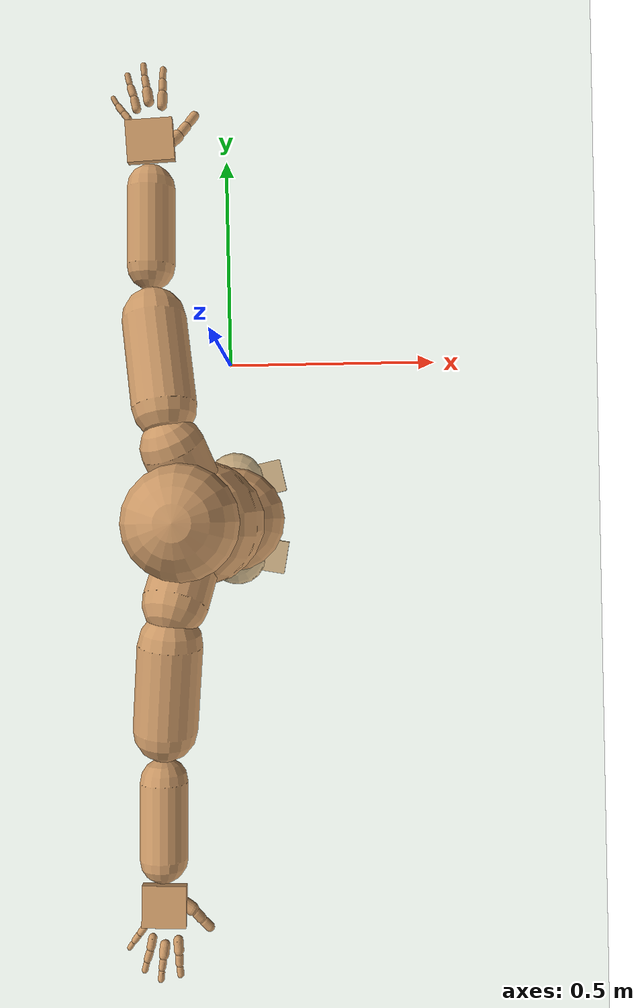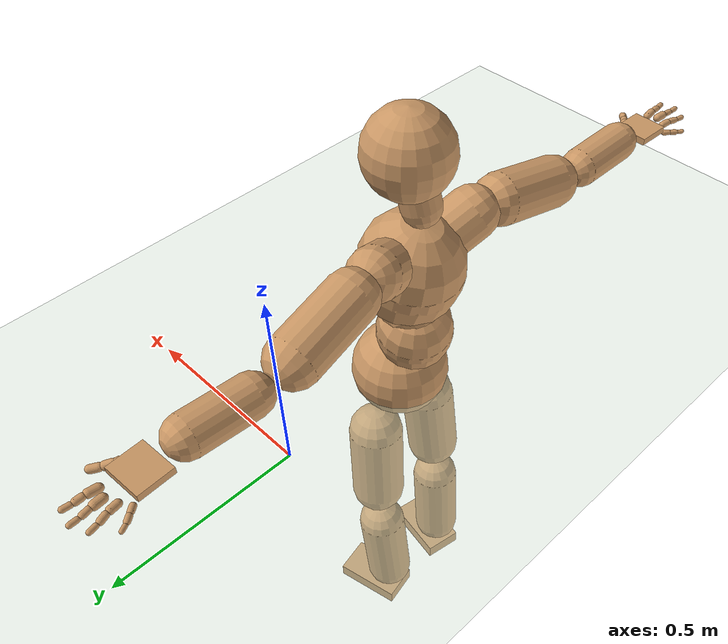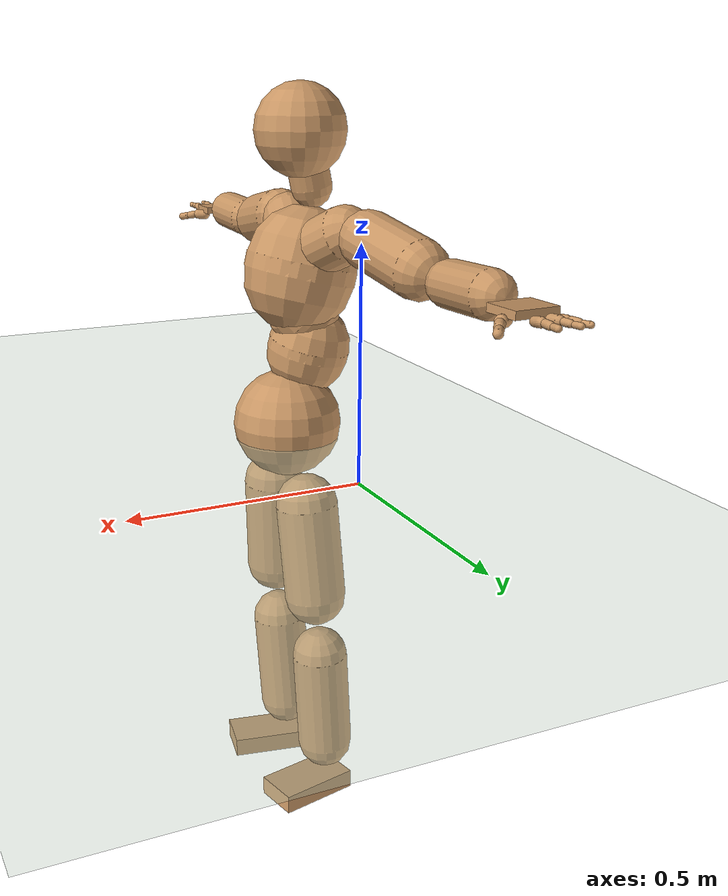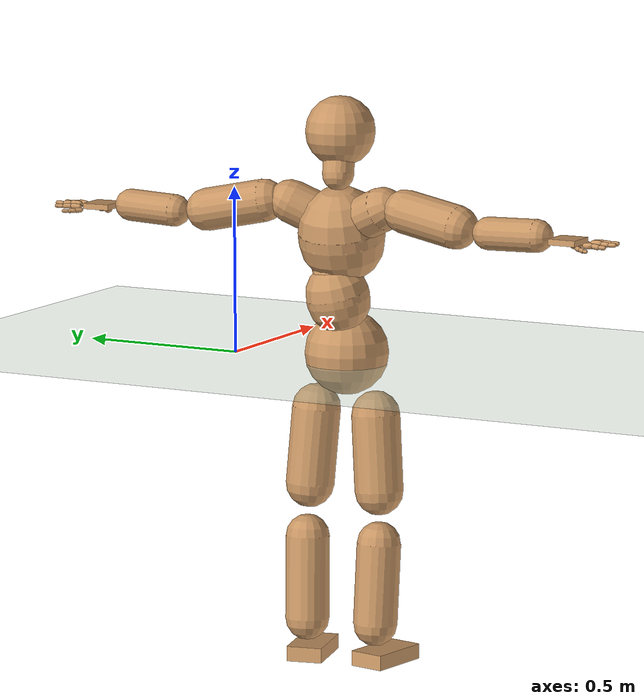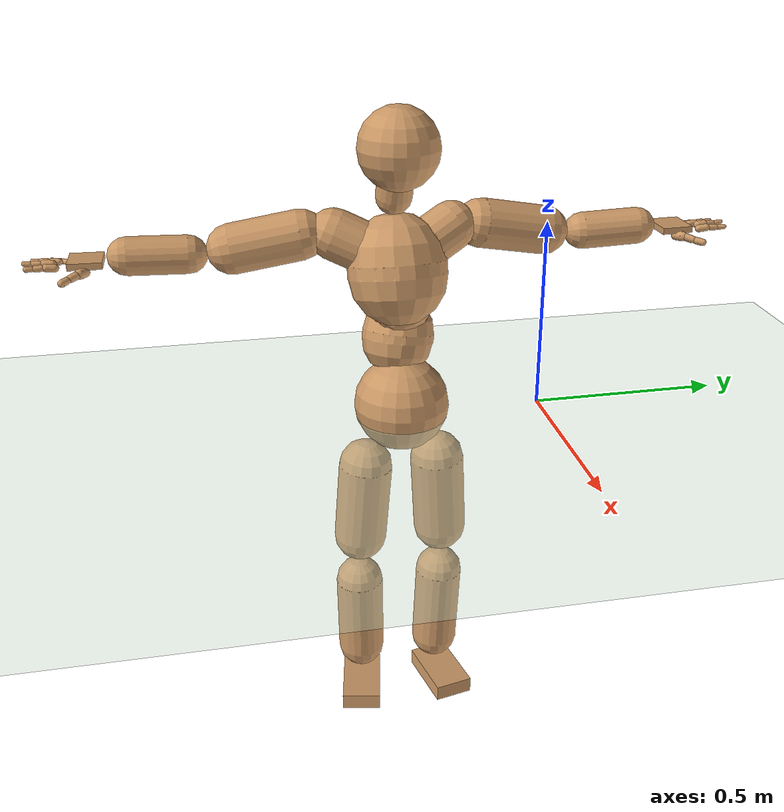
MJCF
<mujoco model="humanoid">
  <compiler coordinate="local" angle="radian"/>
  <default>
    <joint damping="0.0" armature="0.01" stiffness="0.0" limited="true"/>
    <geom conaffinity="1" condim="3" contype="7" margin="0.001" rgba="0.8 0.6 .4 1"/>
  </default>
  <asset>
    <texture type="skybox" builtin="gradient" rgb1=".4 .5 .6" rgb2="0 0 0" width="100" height="100"/>
    <texture builtin="flat" height="1278" mark="cross" markrgb="1 1 1" name="texgeom" random="0.01" rgb1="0.8 0.6 0.4" rgb2="0.8 0.6 0.4" type="cube" width="127"/>
    <texture builtin="checker" height="100" name="texplane" rgb1="0 0 0" rgb2="0.8 0.8 0.8" type="2d" width="100"/>
    <material name="MatPlane" reflectance="0.5" shininess="1" specular="1" texrepeat="60 60" texture="texplane"/>
    <material name="geom" texture="texgeom" texuniform="true"/>
  </asset>
  <worldbody>
    <light cutoff="100" diffuse="1 1 1" dir="-0 0 -1.3" directional="true" exponent="1" pos="0 0 1.3" specular=".1 .1 .1"/>
    <geom conaffinity="1" condim="3" name="floor" pos="0 0 0" rgba="0.8 0.9 0.8 1" size="100 100 .2" type="plane" material="MatPlane"/>
    <body name="Pelvis" pos="0.0008 -0.3766 0.031">
      <freejoint name="Pelvis"/>
      <geom type="sphere" contype="1" conaffinity="1" density="500" size="0.1259" pos="0.0000 0.0000 0.0000" name="Pelvis"/>
      <body name="L_Hip" pos="0.0001 0.0942 -0.0979">
        <joint name="L_Hip_x" type="hinge" pos="0 0 0" axis="1 0 0" stiffness="800" damping="80" armature="0.02" range="-180.0000 180.0000"/>
        <joint name="L_Hip_y" type="hinge" pos="0 0 0" axis="0 1 0" stiffness="800" damping="80" armature="0.02" range="-180.0000 180.0000"/>
        <joint name="L_Hip_z" type="hinge" pos="0 0 0" axis="0 0 1" stiffness="800" damping="80" armature="0.02" range="-180.0000 180.0000"/>
        <geom type="capsule" contype="1" conaffinity="1" density="500" fromto="-0.0050 0.0047 -0.0765 -0.0201 0.0186 -0.3058" size="0.0724" name="L_Hip"/>
        <body name="L_Knee" pos="-0.0251 0.0233 -0.3823">
          <joint name="L_Knee_x" type="hinge" pos="0 0 0" axis="1 0 0" stiffness="800" damping="80" armature="0.02" range="-180.0000 180.0000"/>
          <joint name="L_Knee_y" type="hinge" pos="0 0 0" axis="0 1 0" stiffness="800" damping="80" armature="0.02" range="-180.0000 180.0000"/>
          <joint name="L_Knee_z" type="hinge" pos="0 0 0" axis="0 0 1" stiffness="800" damping="80" armature="0.02" range="-180.0000 180.0000"/>
          <geom type="capsule" contype="1" conaffinity="1" density="500" fromto="-0.0058 -0.0025 -0.0827 -0.0230 -0.0099 -0.3310" size="0.0656" name="L_Knee"/>
          <body name="L_Ankle" pos="-0.0288 -0.0124 -0.4137">
            <joint name="L_Ankle_x" type="hinge" pos="0 0 0" axis="1 0 0" stiffness="800" damping="80" armature="0.02" range="-180.0000 180.0000"/>
            <joint name="L_Ankle_y" type="hinge" pos="0 0 0" axis="0 1 0" stiffness="800" damping="80" armature="0.02" range="-180.0000 180.0000"/>
            <joint name="L_Ankle_z" type="hinge" pos="0 0 0" axis="0 0 1" stiffness="800" damping="80" armature="0.02" range="-180.0000 180.0000"/>
            <geom type="box" contype="1" conaffinity="1" density="500" pos="0.0590 0.0127 -0.0224" size="0.0958 0.0539 0.0225" quat="0.9944 0.0000 0.0000 0.1057" name="L_Ankle"/>
            <body name="L_Toe" pos="0.118 0.0254 -0.0449">
              <joint name="L_Toe_x" type="hinge" pos="0 0 0" axis="1 0 0" stiffness="500" damping="50" armature="0.02" range="-180.0000 180.0000"/>
              <joint name="L_Toe_y" type="hinge" pos="0 0 0" axis="0 1 0" stiffness="500" damping="50" armature="0.02" range="-180.0000 180.0000"/>
              <joint name="L_Toe_z" type="hinge" pos="0 0 0" axis="0 0 1" stiffness="500" damping="50" armature="0.02" range="-180.0000 180.0000"/>
              <geom type="box" contype="1" conaffinity="1" density="500" pos="0.0000 0.0000 0.0222" size="0.001 0.0026 0.0011" quat="0.9937 0.0000 0.0000 0.1119" name="L_Toe"/>
            </body>
          </body>
        </body>
      </body>
      <body name="R_Hip" pos="-0.0009 -0.0932 -0.1038">
        <joint name="R_Hip_x" type="hinge" pos="0 0 0" axis="1 0 0" stiffness="800" damping="80" armature="0.02" range="-180.0000 180.0000"/>
        <joint name="R_Hip_y" type="hinge" pos="0 0 0" axis="0 1 0" stiffness="800" damping="80" armature="0.02" range="-180.0000 180.0000"/>
        <joint name="R_Hip_z" type="hinge" pos="0 0 0" axis="0 0 1" stiffness="800" damping="80" armature="0.02" range="-180.0000 180.0000"/>
        <geom type="capsule" contype="1" conaffinity="1" density="500" fromto="-0.0036 -0.0057 -0.0758 -0.0143 -0.0228 -0.3032" size="0.0721" name="R_Hip"/>
        <body name="R_Knee" pos="-0.0178 -0.0285 -0.379">
          <joint name="R_Knee_x" type="hinge" pos="0 0 0" axis="1 0 0" stiffness="800" damping="80" armature="0.02" range="-180.0000 180.0000"/>
          <joint name="R_Knee_y" type="hinge" pos="0 0 0" axis="0 1 0" stiffness="800" damping="80" armature="0.02" range="-180.0000 180.0000"/>
          <joint name="R_Knee_z" type="hinge" pos="0 0 0" axis="0 0 1" stiffness="800" damping="80" armature="0.02" range="-180.0000 180.0000"/>
          <geom type="capsule" contype="1" conaffinity="1" density="500" fromto="-0.0052 0.0013 -0.0809 -0.0208 0.0051 -0.3234" size="0.0656" name="R_Knee"/>
          <body name="R_Ankle" pos="-0.026 0.0064 -0.4043">
            <joint name="R_Ankle_x" type="hinge" pos="0 0 0" axis="1 0 0" stiffness="800" damping="80" armature="0.02" range="-180.0000 180.0000"/>
            <joint name="R_Ankle_y" type="hinge" pos="0 0 0" axis="0 1 0" stiffness="800" damping="80" armature="0.02" range="-180.0000 180.0000"/>
            <joint name="R_Ankle_z" type="hinge" pos="0 0 0" axis="0 0 1" stiffness="800" damping="80" armature="0.02" range="-180.0000 180.0000"/>
            <geom type="box" contype="1" conaffinity="1" density="500" pos="0.0560 -0.0101 -0.0239" size="0.0958 0.0539 0.0226" quat="0.9960 0.0000 0.0000 -0.0891" name="R_Ankle"/>
            <body name="R_Toe" pos="0.112 -0.0202 -0.0478">
              <joint name="R_Toe_x" type="hinge" pos="0 0 0" axis="1 0 0" stiffness="500" damping="50" armature="0.02" range="-180.0000 180.0000"/>
              <joint name="R_Toe_y" type="hinge" pos="0 0 0" axis="0 1 0" stiffness="500" damping="50" armature="0.02" range="-180.0000 180.0000"/>
              <joint name="R_Toe_z" type="hinge" pos="0 0 0" axis="0 0 1" stiffness="500" damping="50" armature="0.02" range="-180.0000 180.0000"/>
              <geom type="box" contype="1" conaffinity="1" density="500" pos="0.0000 0.0000 0.0237" size="0.001 0.0026 0.0011" quat="0.9969 0.0000 0.0000 -0.0790" name="R_Toe"/>
            </body>
          </body>
        </body>
      </body>
      <body name="Torso" pos="-0.042 -0.0073 0.1161">
        <joint name="Torso_x" type="hinge" pos="0 0 0" axis="1 0 0" stiffness="1000" damping="100" armature="0.02" range="-180.0000 180.0000"/>
        <joint name="Torso_y" type="hinge" pos="0 0 0" axis="0 1 0" stiffness="1000" damping="100" armature="0.02" range="-180.0000 180.0000"/>
        <joint name="Torso_z" type="hinge" pos="0 0 0" axis="0 0 1" stiffness="1000" damping="100" armature="0.02" range="-180.0000 180.0000"/>
        <geom type="capsule" contype="1" conaffinity="1" density="500" fromto="-0.0139 0.0101 0.0668 -0.0093 0.0068 0.0445" size="0.0945" name="Torso"/>
        <body name="Spine" pos="-0.0232 0.0169 0.1114">
          <joint name="Spine_x" type="hinge" pos="0 0 0" axis="1 0 0" stiffness="1000" damping="100" armature="0.02" range="-180.0000 180.0000"/>
          <joint name="Spine_y" type="hinge" pos="0 0 0" axis="0 1 0" stiffness="1000" damping="100" armature="0.02" range="-180.0000 180.0000"/>
          <joint name="Spine_z" type="hinge" pos="0 0 0" axis="0 0 1" stiffness="1000" damping="100" armature="0.02" range="-180.0000 180.0000"/>
          <geom type="capsule" contype="1" conaffinity="1" density="500" fromto="0.0292 -0.0061 0.0281 0.0195 -0.0041 0.0187" size="0.0768" name="Spine"/>
          <body name="Chest" pos="0.0487 -0.0102 0.0468">
            <joint name="Chest_x" type="hinge" pos="0 0 0" axis="1 0 0" stiffness="1000" damping="100" armature="0.02" range="-180.0000 180.0000"/>
            <joint name="Chest_y" type="hinge" pos="0 0 0" axis="0 1 0" stiffness="1000" damping="100" armature="0.02" range="-180.0000 180.0000"/>
            <joint name="Chest_z" type="hinge" pos="0 0 0" axis="0 0 1" stiffness="1000" damping="100" armature="0.02" range="-180.0000 180.0000"/>
            <geom type="capsule" contype="1" conaffinity="1" density="500" fromto="-0.0250 -0.0020 0.0998 -0.0167 -0.0013 0.0665" size="0.1281" name="Chest"/>
            <body name="Neck" pos="-0.0572 -0.0069 0.233">
              <joint name="Neck_x" type="hinge" pos="0 0 0" axis="1 0 0" stiffness="500" damping="50" armature="0.02" range="-180.0000 180.0000"/>
              <joint name="Neck_y" type="hinge" pos="0 0 0" axis="0 1 0" stiffness="500" damping="50" armature="0.02" range="-180.0000 180.0000"/>
              <joint name="Neck_z" type="hinge" pos="0 0 0" axis="0 0 1" stiffness="500" damping="50" armature="0.02" range="-180.0000 180.0000"/>
              <geom type="capsule" contype="1" conaffinity="1" density="500" fromto="0.0073 0.0020 0.0310 0.0293 0.0078 0.1241" size="0.0468" name="Neck"/>
              <body name="Head" pos="0.0366 0.0098 0.1551">
                <joint name="Head_x" type="hinge" pos="0 0 0" axis="1 0 0" stiffness="500" damping="50" armature="0.02" range="-180.0000 180.0000"/>
                <joint name="Head_y" type="hinge" pos="0 0 0" axis="0 1 0" stiffness="500" damping="50" armature="0.02" range="-180.0000 180.0000"/>
                <joint name="Head_z" type="hinge" pos="0 0 0" axis="0 0 1" stiffness="500" damping="50" armature="0.02" range="-180.0000 180.0000"/>
                <geom type="sphere" contype="1" conaffinity="1" density="500" size="0.1041" pos="0.0000 0.0000 0.0000" name="Head"/>
              </body>
            </body>
            <body name="L_Thorax" pos="-0.0292 0.0628 0.1355">
              <joint name="L_Thorax_x" type="hinge" pos="0 0 0" axis="1 0 0" stiffness="500" damping="50" armature="0.02" range="-180.0000 180.0000"/>
              <joint name="L_Thorax_y" type="hinge" pos="0 0 0" axis="0 1 0" stiffness="500" damping="50" armature="0.02" range="-180.0000 180.0000"/>
              <joint name="L_Thorax_z" type="hinge" pos="0 0 0" axis="0 0 1" stiffness="500" damping="50" armature="0.02" range="-180.0000 180.0000"/>
              <geom type="capsule" contype="1" conaffinity="1" density="500" fromto="-0.0079 0.0209 0.0104 -0.0317 0.0836 0.0415" size="0.0642" name="L_Thorax"/>
              <body name="L_Shoulder" pos="-0.0396 0.1046 0.0519">
                <joint name="L_Shoulder_x" type="hinge" pos="0 0 0" axis="1 0 0" stiffness="500" damping="50" armature="0.02" range="-180.0000 180.0000"/>
                <joint name="L_Shoulder_y" type="hinge" pos="0 0 0" axis="0 1 0" stiffness="500" damping="50" armature="0.02" range="-180.0000 180.0000"/>
                <joint name="L_Shoulder_z" type="hinge" pos="0 0 0" axis="0 0 1" stiffness="500" damping="50" armature="0.02" range="-180.0000 180.0000"/>
                <geom type="capsule" contype="1" conaffinity="1" density="500" fromto="-0.0073 0.0596 -0.0119 -0.0293 0.2383 -0.0478" size="0.0639" name="L_Shoulder"/>
                <body name="L_Elbow" pos="-0.0366 0.2979 -0.0597">
                  <joint name="L_Elbow_x" type="hinge" pos="0 0 0" axis="1 0 0" stiffness="500" damping="50" armature="0.02" range="-720.0000 720.0000"/>
                  <joint name="L_Elbow_y" type="hinge" pos="0 0 0" axis="0 1 0" stiffness="500" damping="50" armature="0.02" range="-720.0000 720.0000"/>
                  <joint name="L_Elbow_z" type="hinge" pos="0 0 0" axis="0 0 1" stiffness="500" damping="50" armature="0.02" range="-720.0000 720.0000"/>
                  <geom type="capsule" contype="1" conaffinity="1" density="500" fromto="0.0014 0.0501 0.0020 0.0054 0.2006 0.0081" size="0.0483" name="L_Elbow"/>
                  <body name="L_Wrist" pos="0.0068 0.2507 0.0101">
                    <joint name="L_Wrist_x" type="hinge" pos="0 0 0" axis="1 0 0" stiffness="300" damping="30" armature="0.02" range="-180.0000 180.0000"/>
                    <joint name="L_Wrist_y" type="hinge" pos="0 0 0" axis="0 1 0" stiffness="300" damping="30" armature="0.02" range="-180.0000 180.0000"/>
                    <joint name="L_Wrist_z" type="hinge" pos="0 0 0" axis="0 0 1" stiffness="300" damping="30" armature="0.02" range="-180.0000 180.0000"/>
                    <geom type="box" contype="1" conaffinity="1" density="500" pos="-0.0026 0.0495 -0.0090" size="0.0422 0.0473 0.0084" quat="0.7255 0.0000 0.0000 -0.6882" name="L_Wrist"/>
                    <body name="L_Index1" pos="0.0213 0.1155 -0.015">
                      <joint name="L_Index1_x" type="hinge" pos="0 0 0" axis="1 0 0" stiffness="100" damping="10" armature="0.02" range="-180.0000 180.0000"/>
                      <joint name="L_Index1_y" type="hinge" pos="0 0 0" axis="0 1 0" stiffness="100" damping="10" armature="0.02" range="-180.0000 180.0000"/>
                      <joint name="L_Index1_z" type="hinge" pos="0 0 0" axis="0 0 1" stiffness="100" damping="10" armature="0.02" range="-180.0000 180.0000"/>
                      <geom type="capsule" contype="1" conaffinity="1" density="500" fromto="0.0005 0.0067 0.0007 0.0020 0.0267 0.0029" size="0.0098" name="L_Index1"/>
                      <body name="L_Index2" pos="0.0025 0.0334 0.0036">
                        <joint name="L_Index2_x" type="hinge" pos="0 0 0" axis="1 0 0" stiffness="100" damping="10" armature="0.02" range="-180.0000 180.0000"/>
                        <joint name="L_Index2_y" type="hinge" pos="0 0 0" axis="0 1 0" stiffness="100" damping="10" armature="0.02" range="-180.0000 180.0000"/>
                        <joint name="L_Index2_z" type="hinge" pos="0 0 0" axis="0 0 1" stiffness="100" damping="10" armature="0.02" range="-180.0000 180.0000"/>
                        <geom type="capsule" contype="1" conaffinity="1" density="500" fromto="0.0000 0.0047 -0.0003 0.0002 0.0187 -0.0011" size="0.0081" name="L_Index2"/>
                        <body name="L_Index3" pos="0.0002 0.0234 -0.0013">
                          <joint name="L_Index3_x" type="hinge" pos="0 0 0" axis="1 0 0" stiffness="100" damping="10" armature="0.02" range="-180.0000 180.0000"/>
                          <joint name="L_Index3_y" type="hinge" pos="0 0 0" axis="0 1 0" stiffness="100" damping="10" armature="0.02" range="-180.0000 180.0000"/>
                          <joint name="L_Index3_z" type="hinge" pos="0 0 0" axis="0 0 1" stiffness="100" damping="10" armature="0.02" range="-180.0000 180.0000"/>
                          <geom type="capsule" contype="1" conaffinity="1" density="500" fromto="0.0004 0.0051 0.0001 0.0018 0.0203 0.0005" size="0.0067" name="L_Index3"/>
                        </body>
                      </body>
                    </body>
                    <body name="L_Middle1" pos="-0.0036 0.1235 -0.0122">
                      <joint name="L_Middle1_x" type="hinge" pos="0 0 0" axis="1 0 0" stiffness="100" damping="10" armature="0.02" range="-180.0000 180.0000"/>
                      <joint name="L_Middle1_y" type="hinge" pos="0 0 0" axis="0 1 0" stiffness="100" damping="10" armature="0.02" range="-180.0000 180.0000"/>
                      <joint name="L_Middle1_z" type="hinge" pos="0 0 0" axis="0 0 1" stiffness="100" damping="10" armature="0.02" range="-180.0000 180.0000"/>
                      <geom type="capsule" contype="1" conaffinity="1" density="500" fromto="-0.0008 0.0063 0.0004 -0.0032 0.0254 0.0016" size="0.0102" name="L_Middle1"/>
                      <body name="L_Middle2" pos="-0.004 0.0317 0.002">
                        <joint name="L_Middle2_x" type="hinge" pos="0 0 0" axis="1 0 0" stiffness="100" damping="10" armature="0.02" range="-180.0000 180.0000"/>
                        <joint name="L_Middle2_y" type="hinge" pos="0 0 0" axis="0 1 0" stiffness="100" damping="10" armature="0.02" range="-180.0000 180.0000"/>
                        <joint name="L_Middle2_z" type="hinge" pos="0 0 0" axis="0 0 1" stiffness="100" damping="10" armature="0.02" range="-180.0000 180.0000"/>
                        <geom type="capsule" contype="1" conaffinity="1" density="500" fromto="-0.0008 0.0049 -0.0002 -0.0032 0.0195 -0.0006" size="0.0074" name="L_Middle2"/>
                        <body name="L_Middle3" pos="-0.004 0.0244 -0.0008">
                          <joint name="L_Middle3_x" type="hinge" pos="0 0 0" axis="1 0 0" stiffness="100" damping="10" armature="0.02" range="-180.0000 180.0000"/>
                          <joint name="L_Middle3_y" type="hinge" pos="0 0 0" axis="0 1 0" stiffness="100" damping="10" armature="0.02" range="-180.0000 180.0000"/>
                          <joint name="L_Middle3_z" type="hinge" pos="0 0 0" axis="0 0 1" stiffness="100" damping="10" armature="0.02" range="-180.0000 180.0000"/>
                          <geom type="capsule" contype="1" conaffinity="1" density="500" fromto="-0.0004 0.0053 0.0002 -0.0016 0.0211 0.0010" size="0.0062" name="L_Middle3"/>
                        </body>
                      </body>
                    </body>
                    <body name="L_Pinky1" pos="-0.045 0.0962 -0.0221">
                      <joint name="L_Pinky1_x" type="hinge" pos="0 0 0" axis="1 0 0" stiffness="100" damping="10" armature="0.02" range="-180.0000 180.0000"/>
                      <joint name="L_Pinky1_y" type="hinge" pos="0 0 0" axis="0 1 0" stiffness="100" damping="10" armature="0.02" range="-180.0000 180.0000"/>
                      <joint name="L_Pinky1_z" type="hinge" pos="0 0 0" axis="0 0 1" stiffness="100" damping="10" armature="0.02" range="-180.0000 180.0000"/>
                      <geom type="capsule" contype="1" conaffinity="1" density="500" fromto="-0.0025 0.0032 -0.0002 -0.0100 0.0127 -0.0006" size="0.0071" name="L_Pinky1"/>
                      <body name="L_Pinky2" pos="-0.0124 0.0159 -0.0008">
                        <joint name="L_Pinky2_x" type="hinge" pos="0 0 0" axis="1 0 0" stiffness="100" damping="10" armature="0.02" range="-180.0000 180.0000"/>
                        <joint name="L_Pinky2_y" type="hinge" pos="0 0 0" axis="0 1 0" stiffness="100" damping="10" armature="0.02" range="-180.0000 180.0000"/>
                        <joint name="L_Pinky2_z" type="hinge" pos="0 0 0" axis="0 0 1" stiffness="100" damping="10" armature="0.02" range="-180.0000 180.0000"/>
                        <geom type="capsule" contype="1" conaffinity="1" density="500" fromto="-0.0024 0.0032 -0.0003 -0.0096 0.0127 -0.0011" size="0.0068" name="L_Pinky2"/>
                        <body name="L_Pinky3" pos="-0.012 0.0159 -0.0013">
                          <joint name="L_Pinky3_x" type="hinge" pos="0 0 0" axis="1 0 0" stiffness="100" damping="10" armature="0.02" range="-180.0000 180.0000"/>
                          <joint name="L_Pinky3_y" type="hinge" pos="0 0 0" axis="0 1 0" stiffness="100" damping="10" armature="0.02" range="-180.0000 180.0000"/>
                          <joint name="L_Pinky3_z" type="hinge" pos="0 0 0" axis="0 0 1" stiffness="100" damping="10" armature="0.02" range="-180.0000 180.0000"/>
                          <geom type="capsule" contype="1" conaffinity="1" density="500" fromto="-0.0020 0.0036 0.0001 -0.0080 0.0143 0.0005" size="0.0051" name="L_Pinky3"/>
                        </body>
                      </body>
                    </body>
                    <body name="L_Ring1" pos="-0.0285 0.1107 -0.0159">
                      <joint name="L_Ring1_x" type="hinge" pos="0 0 0" axis="1 0 0" stiffness="100" damping="10" armature="0.02" range="-180.0000 180.0000"/>
                      <joint name="L_Ring1_y" type="hinge" pos="0 0 0" axis="0 1 0" stiffness="100" damping="10" armature="0.02" range="-180.0000 180.0000"/>
                      <joint name="L_Ring1_z" type="hinge" pos="0 0 0" axis="0 0 1" stiffness="100" damping="10" armature="0.02" range="-180.0000 180.0000"/>
                      <geom type="capsule" contype="1" conaffinity="1" density="500" fromto="-0.0011 0.0058 0.0004 -0.0045 0.0234 0.0016" size="0.0087" name="L_Ring1"/>
                      <body name="L_Ring2" pos="-0.0057 0.0292 0.0021">
                        <joint name="L_Ring2_x" type="hinge" pos="0 0 0" axis="1 0 0" stiffness="100" damping="10" armature="0.02" range="-180.0000 180.0000"/>
                        <joint name="L_Ring2_y" type="hinge" pos="0 0 0" axis="0 1 0" stiffness="100" damping="10" armature="0.02" range="-180.0000 180.0000"/>
                        <joint name="L_Ring2_z" type="hinge" pos="0 0 0" axis="0 0 1" stiffness="100" damping="10" armature="0.02" range="-180.0000 180.0000"/>
                        <geom type="capsule" contype="1" conaffinity="1" density="500" fromto="-0.0015 0.0047 -0.0002 -0.0060 0.0187 -0.0010" size="0.0078" name="L_Ring2"/>
                        <body name="L_Ring3" pos="-0.0075 0.0234 -0.0012">
                          <joint name="L_Ring3_x" type="hinge" pos="0 0 0" axis="1 0 0" stiffness="100" damping="10" armature="0.02" range="-180.0000 180.0000"/>
                          <joint name="L_Ring3_y" type="hinge" pos="0 0 0" axis="0 1 0" stiffness="100" damping="10" armature="0.02" range="-180.0000 180.0000"/>
                          <joint name="L_Ring3_z" type="hinge" pos="0 0 0" axis="0 0 1" stiffness="100" damping="10" armature="0.02" range="-180.0000 180.0000"/>
                          <geom type="capsule" contype="1" conaffinity="1" density="500" fromto="-0.0011 0.0051 0.0002 -0.0044 0.0203 0.0006" size="0.006" name="L_Ring3"/>
                        </body>
                      </body>
                    </body>
                    <body name="L_Thumb1" pos="0.0297 0.0489 -0.0251">
                      <joint name="L_Thumb1_x" type="hinge" pos="0 0 0" axis="1 0 0" stiffness="100" damping="10" armature="0.02" range="-180.0000 180.0000"/>
                      <joint name="L_Thumb1_y" type="hinge" pos="0 0 0" axis="0 1 0" stiffness="100" damping="10" armature="0.02" range="-180.0000 180.0000"/>
                      <joint name="L_Thumb1_z" type="hinge" pos="0 0 0" axis="0 0 1" stiffness="100" damping="10" armature="0.02" range="-180.0000 180.0000"/>
                      <geom type="capsule" contype="1" conaffinity="1" density="500" fromto="0.0051 0.0037 0.0003 0.0203 0.0147 0.0012" size="0.013" name="L_Thumb1"/>
                      <body name="L_Thumb2" pos="0.0254 0.0184 0.0015">
                        <joint name="L_Thumb2_x" type="hinge" pos="0 0 0" axis="1 0 0" stiffness="100" damping="10" armature="0.02" range="-180.0000 180.0000"/>
                        <joint name="L_Thumb2_y" type="hinge" pos="0 0 0" axis="0 1 0" stiffness="100" damping="10" armature="0.02" range="-180.0000 180.0000"/>
                        <joint name="L_Thumb2_z" type="hinge" pos="0 0 0" axis="0 0 1" stiffness="100" damping="10" armature="0.02" range="-180.0000 180.0000"/>
                        <geom type="capsule" contype="1" conaffinity="1" density="500" fromto="0.0030 0.0043 -0.0012 0.0122 0.0172 -0.0049" size="0.01" name="L_Thumb2"/>
                        <body name="L_Thumb3" pos="0.0152 0.0215 -0.0062">
                          <joint name="L_Thumb3_x" type="hinge" pos="0 0 0" axis="1 0 0" stiffness="100" damping="10" armature="0.02" range="-180.0000 180.0000"/>
                          <joint name="L_Thumb3_y" type="hinge" pos="0 0 0" axis="0 1 0" stiffness="100" damping="10" armature="0.02" range="-180.0000 180.0000"/>
                          <joint name="L_Thumb3_z" type="hinge" pos="0 0 0" axis="0 0 1" stiffness="100" damping="10" armature="0.02" range="-180.0000 180.0000"/>
                          <geom type="capsule" contype="1" conaffinity="1" density="500" fromto="0.0034 0.0047 -0.0008 0.0138 0.0188 -0.0033" size="0.0093" name="L_Thumb3"/>
                        </body>
                      </body>
                    </body>
                  </body>
                </body>
              </body>
            </body>
            <body name="R_Thorax" pos="-0.0387 -0.0658 0.1305">
              <joint name="R_Thorax_x" type="hinge" pos="0 0 0" axis="1 0 0" stiffness="500" damping="50" armature="0.02" range="-180.0000 180.0000"/>
              <joint name="R_Thorax_y" type="hinge" pos="0 0 0" axis="0 1 0" stiffness="500" damping="50" armature="0.02" range="-180.0000 180.0000"/>
              <joint name="R_Thorax_z" type="hinge" pos="0 0 0" axis="0 0 1" stiffness="500" damping="50" armature="0.02" range="-180.0000 180.0000"/>
              <geom type="capsule" contype="1" conaffinity="1" density="500" fromto="-0.0059 -0.0228 0.0106 -0.0236 -0.0911 0.0422" size="0.0656" name="R_Thorax"/>
              <body name="R_Shoulder" pos="-0.0295 -0.1138 0.0528">
                <joint name="R_Shoulder_x" type="hinge" pos="0 0 0" axis="1 0 0" stiffness="500" damping="50" armature="0.02" range="-180.0000 180.0000"/>
                <joint name="R_Shoulder_y" type="hinge" pos="0 0 0" axis="0 1 0" stiffness="500" damping="50" armature="0.02" range="-180.0000 180.0000"/>
                <joint name="R_Shoulder_z" type="hinge" pos="0 0 0" axis="0 0 1" stiffness="500" damping="50" armature="0.02" range="-180.0000 180.0000"/>
                <geom type="capsule" contype="1" conaffinity="1" density="500" fromto="-0.0057 -0.0576 -0.0105 -0.0228 -0.2303 -0.0420" size="0.0644" name="R_Shoulder"/>
                <body name="R_Elbow" pos="-0.0285 -0.2879 -0.0525">
                  <joint name="R_Elbow_x" type="hinge" pos="0 0 0" axis="1 0 0" stiffness="500" damping="50" armature="0.02" range="-720.0000 720.0000"/>
                  <joint name="R_Elbow_y" type="hinge" pos="0 0 0" axis="0 1 0" stiffness="500" damping="50" armature="0.02" range="-720.0000 720.0000"/>
                  <joint name="R_Elbow_z" type="hinge" pos="0 0 0" axis="0 0 1" stiffness="500" damping="50" armature="0.02" range="-720.0000 720.0000"/>
                  <geom type="capsule" contype="1" conaffinity="1" density="500" fromto="-0.0008 -0.0501 0.0012 -0.0032 -0.2004 0.0048" size="0.0484" name="R_Elbow"/>
                  <body name="R_Wrist" pos="-0.004 -0.2505 0.0059">
                    <joint name="R_Wrist_x" type="hinge" pos="0 0 0" axis="1 0 0" stiffness="300" damping="30" armature="0.02" range="-180.0000 180.0000"/>
                    <joint name="R_Wrist_y" type="hinge" pos="0 0 0" axis="0 1 0" stiffness="300" damping="30" armature="0.02" range="-180.0000 180.0000"/>
                    <joint name="R_Wrist_z" type="hinge" pos="0 0 0" axis="0 0 1" stiffness="300" damping="30" armature="0.02" range="-180.0000 180.0000"/>
                    <geom type="box" contype="1" conaffinity="1" density="500" pos="-0.0016 -0.0487 -0.0085" size="0.0422 0.0443 0.0087" quat="0.7183 0.0000 0.0000 0.6957" name="R_Wrist"/>
                    <body name="R_Index1" pos="0.0234 -0.114 -0.0139">
                      <joint name="R_Index1_x" type="hinge" pos="0 0 0" axis="1 0 0" stiffness="100" damping="10" armature="0.02" range="-180.0000 180.0000"/>
                      <joint name="R_Index1_y" type="hinge" pos="0 0 0" axis="0 1 0" stiffness="100" damping="10" armature="0.02" range="-180.0000 180.0000"/>
                      <joint name="R_Index1_z" type="hinge" pos="0 0 0" axis="0 0 1" stiffness="100" damping="10" armature="0.02" range="-180.0000 180.0000"/>
                      <geom type="capsule" contype="1" conaffinity="1" density="500" fromto="0.0005 -0.0067 0.0007 0.0020 -0.0267 0.0029" size="0.0098" name="R_Index1"/>
                      <body name="R_Index2" pos="0.0025 -0.0334 0.0036">
                        <joint name="R_Index2_x" type="hinge" pos="0 0 0" axis="1 0 0" stiffness="100" damping="10" armature="0.02" range="-180.0000 180.0000"/>
                        <joint name="R_Index2_y" type="hinge" pos="0 0 0" axis="0 1 0" stiffness="100" damping="10" armature="0.02" range="-180.0000 180.0000"/>
                        <joint name="R_Index2_z" type="hinge" pos="0 0 0" axis="0 0 1" stiffness="100" damping="10" armature="0.02" range="-180.0000 180.0000"/>
                        <geom type="capsule" contype="1" conaffinity="1" density="500" fromto="0.0000 -0.0047 -0.0003 0.0002 -0.0187 -0.0011" size="0.0081" name="R_Index2"/>
                        <body name="R_Index3" pos="0.0002 -0.0234 -0.0013">
                          <joint name="R_Index3_x" type="hinge" pos="0 0 0" axis="1 0 0" stiffness="100" damping="10" armature="0.02" range="-180.0000 180.0000"/>
                          <joint name="R_Index3_y" type="hinge" pos="0 0 0" axis="0 1 0" stiffness="100" damping="10" armature="0.02" range="-180.0000 180.0000"/>
                          <joint name="R_Index3_z" type="hinge" pos="0 0 0" axis="0 0 1" stiffness="100" damping="10" armature="0.02" range="-180.0000 180.0000"/>
                          <geom type="capsule" contype="1" conaffinity="1" density="500" fromto="0.0004 -0.0043 0.0001 0.0018 -0.0171 0.0005" size="0.0069" name="R_Index3"/>
                        </body>
                      </body>
                    </body>
                    <body name="R_Middle1" pos="-0.0015 -0.1219 -0.0111">
                      <joint name="R_Middle1_x" type="hinge" pos="0 0 0" axis="1 0 0" stiffness="100" damping="10" armature="0.02" range="-180.0000 180.0000"/>
                      <joint name="R_Middle1_y" type="hinge" pos="0 0 0" axis="0 1 0" stiffness="100" damping="10" armature="0.02" range="-180.0000 180.0000"/>
                      <joint name="R_Middle1_z" type="hinge" pos="0 0 0" axis="0 0 1" stiffness="100" damping="10" armature="0.02" range="-180.0000 180.0000"/>
                      <geom type="capsule" contype="1" conaffinity="1" density="500" fromto="-0.0008 -0.0063 0.0004 -0.0032 -0.0254 0.0016" size="0.0102" name="R_Middle1"/>
                      <body name="R_Middle2" pos="-0.004 -0.0317 0.002">
                        <joint name="R_Middle2_x" type="hinge" pos="0 0 0" axis="1 0 0" stiffness="100" damping="10" armature="0.02" range="-180.0000 180.0000"/>
                        <joint name="R_Middle2_y" type="hinge" pos="0 0 0" axis="0 1 0" stiffness="100" damping="10" armature="0.02" range="-180.0000 180.0000"/>
                        <joint name="R_Middle2_z" type="hinge" pos="0 0 0" axis="0 0 1" stiffness="100" damping="10" armature="0.02" range="-180.0000 180.0000"/>
                        <geom type="capsule" contype="1" conaffinity="1" density="500" fromto="-0.0008 -0.0049 -0.0002 -0.0032 -0.0195 -0.0006" size="0.0074" name="R_Middle2"/>
                        <body name="R_Middle3" pos="-0.004 -0.0244 -0.0008">
                          <joint name="R_Middle3_x" type="hinge" pos="0 0 0" axis="1 0 0" stiffness="100" damping="10" armature="0.02" range="-180.0000 180.0000"/>
                          <joint name="R_Middle3_y" type="hinge" pos="0 0 0" axis="0 1 0" stiffness="100" damping="10" armature="0.02" range="-180.0000 180.0000"/>
                          <joint name="R_Middle3_z" type="hinge" pos="0 0 0" axis="0 0 1" stiffness="100" damping="10" armature="0.02" range="-180.0000 180.0000"/>
                          <geom type="capsule" contype="1" conaffinity="1" density="500" fromto="-0.0004 -0.0045 0.0002 -0.0016 -0.0179 0.0010" size="0.0065" name="R_Middle3"/>
                        </body>
                      </body>
                    </body>
                    <body name="R_Pinky1" pos="-0.0429 -0.0946 -0.021">
                      <joint name="R_Pinky1_x" type="hinge" pos="0 0 0" axis="1 0 0" stiffness="100" damping="10" armature="0.02" range="-180.0000 180.0000"/>
                      <joint name="R_Pinky1_y" type="hinge" pos="0 0 0" axis="0 1 0" stiffness="100" damping="10" armature="0.02" range="-180.0000 180.0000"/>
                      <joint name="R_Pinky1_z" type="hinge" pos="0 0 0" axis="0 0 1" stiffness="100" damping="10" armature="0.02" range="-180.0000 180.0000"/>
                      <geom type="capsule" contype="1" conaffinity="1" density="500" fromto="-0.0025 -0.0032 -0.0002 -0.0100 -0.0127 -0.0006" size="0.0071" name="R_Pinky1"/>
                      <body name="R_Pinky2" pos="-0.0124 -0.0159 -0.0008">
                        <joint name="R_Pinky2_x" type="hinge" pos="0 0 0" axis="1 0 0" stiffness="100" damping="10" armature="0.02" range="-180.0000 180.0000"/>
                        <joint name="R_Pinky2_y" type="hinge" pos="0 0 0" axis="0 1 0" stiffness="100" damping="10" armature="0.02" range="-180.0000 180.0000"/>
                        <joint name="R_Pinky2_z" type="hinge" pos="0 0 0" axis="0 0 1" stiffness="100" damping="10" armature="0.02" range="-180.0000 180.0000"/>
                        <geom type="capsule" contype="1" conaffinity="1" density="500" fromto="-0.0024 -0.0032 -0.0003 -0.0096 -0.0127 -0.0011" size="0.0068" name="R_Pinky2"/>
                        <body name="R_Pinky3" pos="-0.012 -0.0159 -0.0013">
                          <joint name="R_Pinky3_x" type="hinge" pos="0 0 0" axis="1 0 0" stiffness="100" damping="10" armature="0.02" range="-180.0000 180.0000"/>
                          <joint name="R_Pinky3_y" type="hinge" pos="0 0 0" axis="0 1 0" stiffness="100" damping="10" armature="0.02" range="-180.0000 180.0000"/>
                          <joint name="R_Pinky3_z" type="hinge" pos="0 0 0" axis="0 0 1" stiffness="100" damping="10" armature="0.02" range="-180.0000 180.0000"/>
                          <geom type="capsule" contype="1" conaffinity="1" density="500" fromto="-0.0020 -0.0028 0.0001 -0.0080 -0.0111 0.0005" size="0.0054" name="R_Pinky3"/>
                        </body>
                      </body>
                    </body>
                    <body name="R_Ring1" pos="-0.0264 -0.1091 -0.0148">
                      <joint name="R_Ring1_x" type="hinge" pos="0 0 0" axis="1 0 0" stiffness="100" damping="10" armature="0.02" range="-180.0000 180.0000"/>
                      <joint name="R_Ring1_y" type="hinge" pos="0 0 0" axis="0 1 0" stiffness="100" damping="10" armature="0.02" range="-180.0000 180.0000"/>
                      <joint name="R_Ring1_z" type="hinge" pos="0 0 0" axis="0 0 1" stiffness="100" damping="10" armature="0.02" range="-180.0000 180.0000"/>
                      <geom type="capsule" contype="1" conaffinity="1" density="500" fromto="-0.0011 -0.0058 0.0004 -0.0045 -0.0234 0.0016" size="0.0087" name="R_Ring1"/>
                      <body name="R_Ring2" pos="-0.0057 -0.0292 0.0021">
                        <joint name="R_Ring2_x" type="hinge" pos="0 0 0" axis="1 0 0" stiffness="100" damping="10" armature="0.02" range="-180.0000 180.0000"/>
                        <joint name="R_Ring2_y" type="hinge" pos="0 0 0" axis="0 1 0" stiffness="100" damping="10" armature="0.02" range="-180.0000 180.0000"/>
                        <joint name="R_Ring2_z" type="hinge" pos="0 0 0" axis="0 0 1" stiffness="100" damping="10" armature="0.02" range="-180.0000 180.0000"/>
                        <geom type="capsule" contype="1" conaffinity="1" density="500" fromto="-0.0015 -0.0047 -0.0002 -0.0060 -0.0187 -0.0010" size="0.0078" name="R_Ring2"/>
                        <body name="R_Ring3" pos="-0.0075 -0.0234 -0.0012">
                          <joint name="R_Ring3_x" type="hinge" pos="0 0 0" axis="1 0 0" stiffness="100" damping="10" armature="0.02" range="-180.0000 180.0000"/>
                          <joint name="R_Ring3_y" type="hinge" pos="0 0 0" axis="0 1 0" stiffness="100" damping="10" armature="0.02" range="-180.0000 180.0000"/>
                          <joint name="R_Ring3_z" type="hinge" pos="0 0 0" axis="0 0 1" stiffness="100" damping="10" armature="0.02" range="-180.0000 180.0000"/>
                          <geom type="capsule" contype="1" conaffinity="1" density="500" fromto="-0.0011 -0.0043 0.0002 -0.0044 -0.0171 0.0006" size="0.0063" name="R_Ring3"/>
                        </body>
                      </body>
                    </body>
                    <body name="R_Thumb1" pos="0.0318 -0.0473 -0.024">
                      <joint name="R_Thumb1_x" type="hinge" pos="0 0 0" axis="1 0 0" stiffness="100" damping="10" armature="0.02" range="-180.0000 180.0000"/>
                      <joint name="R_Thumb1_y" type="hinge" pos="0 0 0" axis="0 1 0" stiffness="100" damping="10" armature="0.02" range="-180.0000 180.0000"/>
                      <joint name="R_Thumb1_z" type="hinge" pos="0 0 0" axis="0 0 1" stiffness="100" damping="10" armature="0.02" range="-180.0000 180.0000"/>
                      <geom type="capsule" contype="1" conaffinity="1" density="500" fromto="0.0051 -0.0037 0.0003 0.0203 -0.0147 0.0012" size="0.013" name="R_Thumb1"/>
                      <body name="R_Thumb2" pos="0.0254 -0.0184 0.0015">
                        <joint name="R_Thumb2_x" type="hinge" pos="0 0 0" axis="1 0 0" stiffness="100" damping="10" armature="0.02" range="-180.0000 180.0000"/>
                        <joint name="R_Thumb2_y" type="hinge" pos="0 0 0" axis="0 1 0" stiffness="100" damping="10" armature="0.02" range="-180.0000 180.0000"/>
                        <joint name="R_Thumb2_z" type="hinge" pos="0 0 0" axis="0 0 1" stiffness="100" damping="10" armature="0.02" range="-180.0000 180.0000"/>
                        <geom type="capsule" contype="1" conaffinity="1" density="500" fromto="0.0030 -0.0043 -0.0012 0.0122 -0.0172 -0.0049" size="0.01" name="R_Thumb2"/>
                        <body name="R_Thumb3" pos="0.0152 -0.0215 -0.0062">
                          <joint name="R_Thumb3_x" type="hinge" pos="0 0 0" axis="1 0 0" stiffness="100" damping="10" armature="0.02" range="-180.0000 180.0000"/>
                          <joint name="R_Thumb3_y" type="hinge" pos="0 0 0" axis="0 1 0" stiffness="100" damping="10" armature="0.02" range="-180.0000 180.0000"/>
                          <joint name="R_Thumb3_z" type="hinge" pos="0 0 0" axis="0 0 1" stiffness="100" damping="10" armature="0.02" range="-180.0000 180.0000"/>
                          <geom type="capsule" contype="1" conaffinity="1" density="500" fromto="0.0034 -0.0039 -0.0008 0.0138 -0.0156 -0.0033" size="0.0095" name="R_Thumb3"/>
                        </body>
                      </body>
                    </body>
                  </body>
                </body>
              </body>
            </body>
          </body>
        </body>
      </body>
    </body>
  </worldbody>
  <actuator>
    <motor name="L_Hip_x" joint="L_Hip_x" gear="500"/>
    <motor name="L_Hip_y" joint="L_Hip_y" gear="500"/>
    <motor name="L_Hip_z" joint="L_Hip_z" gear="500"/>
    <motor name="L_Knee_x" joint="L_Knee_x" gear="500"/>
    <motor name="L_Knee_y" joint="L_Knee_y" gear="500"/>
    <motor name="L_Knee_z" joint="L_Knee_z" gear="500"/>
    <motor name="L_Ankle_x" joint="L_Ankle_x" gear="500"/>
    <motor name="L_Ankle_y" joint="L_Ankle_y" gear="500"/>
    <motor name="L_Ankle_z" joint="L_Ankle_z" gear="500"/>
    <motor name="L_Toe_x" joint="L_Toe_x" gear="500"/>
    <motor name="L_Toe_y" joint="L_Toe_y" gear="500"/>
    <motor name="L_Toe_z" joint="L_Toe_z" gear="500"/>
    <motor name="R_Hip_x" joint="R_Hip_x" gear="500"/>
    <motor name="R_Hip_y" joint="R_Hip_y" gear="500"/>
    <motor name="R_Hip_z" joint="R_Hip_z" gear="500"/>
    <motor name="R_Knee_x" joint="R_Knee_x" gear="500"/>
    <motor name="R_Knee_y" joint="R_Knee_y" gear="500"/>
    <motor name="R_Knee_z" joint="R_Knee_z" gear="500"/>
    <motor name="R_Ankle_x" joint="R_Ankle_x" gear="500"/>
    <motor name="R_Ankle_y" joint="R_Ankle_y" gear="500"/>
    <motor name="R_Ankle_z" joint="R_Ankle_z" gear="500"/>
    <motor name="R_Toe_x" joint="R_Toe_x" gear="500"/>
    <motor name="R_Toe_y" joint="R_Toe_y" gear="500"/>
    <motor name="R_Toe_z" joint="R_Toe_z" gear="500"/>
    <motor name="Torso_x" joint="Torso_x" gear="500"/>
    <motor name="Torso_y" joint="Torso_y" gear="500"/>
    <motor name="Torso_z" joint="Torso_z" gear="500"/>
    <motor name="Spine_x" joint="Spine_x" gear="500"/>
    <motor name="Spine_y" joint="Spine_y" gear="500"/>
    <motor name="Spine_z" joint="Spine_z" gear="500"/>
    <motor name="Chest_x" joint="Chest_x" gear="500"/>
    <motor name="Chest_y" joint="Chest_y" gear="500"/>
    <motor name="Chest_z" joint="Chest_z" gear="500"/>
    <motor name="Neck_x" joint="Neck_x" gear="500"/>
    <motor name="Neck_y" joint="Neck_y" gear="500"/>
    <motor name="Neck_z" joint="Neck_z" gear="500"/>
    <motor name="Head_x" joint="Head_x" gear="500"/>
    <motor name="Head_y" joint="Head_y" gear="500"/>
    <motor name="Head_z" joint="Head_z" gear="500"/>
    <motor name="L_Thorax_x" joint="L_Thorax_x" gear="500"/>
    <motor name="L_Thorax_y" joint="L_Thorax_y" gear="500"/>
    <motor name="L_Thorax_z" joint="L_Thorax_z" gear="500"/>
    <motor name="L_Shoulder_x" joint="L_Shoulder_x" gear="500"/>
    <motor name="L_Shoulder_y" joint="L_Shoulder_y" gear="500"/>
    <motor name="L_Shoulder_z" joint="L_Shoulder_z" gear="500"/>
    <motor name="L_Elbow_x" joint="L_Elbow_x" gear="500"/>
    <motor name="L_Elbow_y" joint="L_Elbow_y" gear="500"/>
    <motor name="L_Elbow_z" joint="L_Elbow_z" gear="500"/>
    <motor name="L_Wrist_x" joint="L_Wrist_x" gear="500"/>
    <motor name="L_Wrist_y" joint="L_Wrist_y" gear="500"/>
    <motor name="L_Wrist_z" joint="L_Wrist_z" gear="500"/>
    <motor name="L_Index1_x" joint="L_Index1_x" gear="500"/>
    <motor name="L_Index1_y" joint="L_Index1_y" gear="500"/>
    <motor name="L_Index1_z" joint="L_Index1_z" gear="500"/>
    <motor name="L_Index2_x" joint="L_Index2_x" gear="500"/>
    <motor name="L_Index2_y" joint="L_Index2_y" gear="500"/>
    <motor name="L_Index2_z" joint="L_Index2_z" gear="500"/>
    <motor name="L_Index3_x" joint="L_Index3_x" gear="500"/>
    <motor name="L_Index3_y" joint="L_Index3_y" gear="500"/>
    <motor name="L_Index3_z" joint="L_Index3_z" gear="500"/>
    <motor name="L_Middle1_x" joint="L_Middle1_x" gear="500"/>
    <motor name="L_Middle1_y" joint="L_Middle1_y" gear="500"/>
    <motor name="L_Middle1_z" joint="L_Middle1_z" gear="500"/>
    <motor name="L_Middle2_x" joint="L_Middle2_x" gear="500"/>
    <motor name="L_Middle2_y" joint="L_Middle2_y" gear="500"/>
    <motor name="L_Middle2_z" joint="L_Middle2_z" gear="500"/>
    <motor name="L_Middle3_x" joint="L_Middle3_x" gear="500"/>
    <motor name="L_Middle3_y" joint="L_Middle3_y" gear="500"/>
    <motor name="L_Middle3_z" joint="L_Middle3_z" gear="500"/>
    <motor name="L_Pinky1_x" joint="L_Pinky1_x" gear="500"/>
    <motor name="L_Pinky1_y" joint="L_Pinky1_y" gear="500"/>
    <motor name="L_Pinky1_z" joint="L_Pinky1_z" gear="500"/>
    <motor name="L_Pinky2_x" joint="L_Pinky2_x" gear="500"/>
    <motor name="L_Pinky2_y" joint="L_Pinky2_y" gear="500"/>
    <motor name="L_Pinky2_z" joint="L_Pinky2_z" gear="500"/>
    <motor name="L_Pinky3_x" joint="L_Pinky3_x" gear="500"/>
    <motor name="L_Pinky3_y" joint="L_Pinky3_y" gear="500"/>
    <motor name="L_Pinky3_z" joint="L_Pinky3_z" gear="500"/>
    <motor name="L_Ring1_x" joint="L_Ring1_x" gear="500"/>
    <motor name="L_Ring1_y" joint="L_Ring1_y" gear="500"/>
    <motor name="L_Ring1_z" joint="L_Ring1_z" gear="500"/>
    <motor name="L_Ring2_x" joint="L_Ring2_x" gear="500"/>
    <motor name="L_Ring2_y" joint="L_Ring2_y" gear="500"/>
    <motor name="L_Ring2_z" joint="L_Ring2_z" gear="500"/>
    <motor name="L_Ring3_x" joint="L_Ring3_x" gear="500"/>
    <motor name="L_Ring3_y" joint="L_Ring3_y" gear="500"/>
    <motor name="L_Ring3_z" joint="L_Ring3_z" gear="500"/>
    <motor name="L_Thumb1_x" joint="L_Thumb1_x" gear="500"/>
    <motor name="L_Thumb1_y" joint="L_Thumb1_y" gear="500"/>
    <motor name="L_Thumb1_z" joint="L_Thumb1_z" gear="500"/>
    <motor name="L_Thumb2_x" joint="L_Thumb2_x" gear="500"/>
    <motor name="L_Thumb2_y" joint="L_Thumb2_y" gear="500"/>
    <motor name="L_Thumb2_z" joint="L_Thumb2_z" gear="500"/>
    <motor name="L_Thumb3_x" joint="L_Thumb3_x" gear="500"/>
    <motor name="L_Thumb3_y" joint="L_Thumb3_y" gear="500"/>
    <motor name="L_Thumb3_z" joint="L_Thumb3_z" gear="500"/>
    <motor name="R_Thorax_x" joint="R_Thorax_x" gear="500"/>
    <motor name="R_Thorax_y" joint="R_Thorax_y" gear="500"/>
    <motor name="R_Thorax_z" joint="R_Thorax_z" gear="500"/>
    <motor name="R_Shoulder_x" joint="R_Shoulder_x" gear="500"/>
    <motor name="R_Shoulder_y" joint="R_Shoulder_y" gear="500"/>
    <motor name="R_Shoulder_z" joint="R_Shoulder_z" gear="500"/>
    <motor name="R_Elbow_x" joint="R_Elbow_x" gear="500"/>
    <motor name="R_Elbow_y" joint="R_Elbow_y" gear="500"/>
    <motor name="R_Elbow_z" joint="R_Elbow_z" gear="500"/>
    <motor name="R_Wrist_x" joint="R_Wrist_x" gear="500"/>
    <motor name="R_Wrist_y" joint="R_Wrist_y" gear="500"/>
    <motor name="R_Wrist_z" joint="R_Wrist_z" gear="500"/>
    <motor name="R_Index1_x" joint="R_Index1_x" gear="500"/>
    <motor name="R_Index1_y" joint="R_Index1_y" gear="500"/>
    <motor name="R_Index1_z" joint="R_Index1_z" gear="500"/>
    <motor name="R_Index2_x" joint="R_Index2_x" gear="500"/>
    <motor name="R_Index2_y" joint="R_Index2_y" gear="500"/>
    <motor name="R_Index2_z" joint="R_Index2_z" gear="500"/>
    <motor name="R_Index3_x" joint="R_Index3_x" gear="500"/>
    <motor name="R_Index3_y" joint="R_Index3_y" gear="500"/>
    <motor name="R_Index3_z" joint="R_Index3_z" gear="500"/>
    <motor name="R_Middle1_x" joint="R_Middle1_x" gear="500"/>
    <motor name="R_Middle1_y" joint="R_Middle1_y" gear="500"/>
    <motor name="R_Middle1_z" joint="R_Middle1_z" gear="500"/>
    <motor name="R_Middle2_x" joint="R_Middle2_x" gear="500"/>
    <motor name="R_Middle2_y" joint="R_Middle2_y" gear="500"/>
    <motor name="R_Middle2_z" joint="R_Middle2_z" gear="500"/>
    <motor name="R_Middle3_x" joint="R_Middle3_x" gear="500"/>
    <motor name="R_Middle3_y" joint="R_Middle3_y" gear="500"/>
    <motor name="R_Middle3_z" joint="R_Middle3_z" gear="500"/>
    <motor name="R_Pinky1_x" joint="R_Pinky1_x" gear="500"/>
    <motor name="R_Pinky1_y" joint="R_Pinky1_y" gear="500"/>
    <motor name="R_Pinky1_z" joint="R_Pinky1_z" gear="500"/>
    <motor name="R_Pinky2_x" joint="R_Pinky2_x" gear="500"/>
    <motor name="R_Pinky2_y" joint="R_Pinky2_y" gear="500"/>
    <motor name="R_Pinky2_z" joint="R_Pinky2_z" gear="500"/>
    <motor name="R_Pinky3_x" joint="R_Pinky3_x" gear="500"/>
    <motor name="R_Pinky3_y" joint="R_Pinky3_y" gear="500"/>
    <motor name="R_Pinky3_z" joint="R_Pinky3_z" gear="500"/>
    <motor name="R_Ring1_x" joint="R_Ring1_x" gear="500"/>
    <motor name="R_Ring1_y" joint="R_Ring1_y" gear="500"/>
    <motor name="R_Ring1_z" joint="R_Ring1_z" gear="500"/>
    <motor name="R_Ring2_x" joint="R_Ring2_x" gear="500"/>
    <motor name="R_Ring2_y" joint="R_Ring2_y" gear="500"/>
    <motor name="R_Ring2_z" joint="R_Ring2_z" gear="500"/>
    <motor name="R_Ring3_x" joint="R_Ring3_x" gear="500"/>
    <motor name="R_Ring3_y" joint="R_Ring3_y" gear="500"/>
    <motor name="R_Ring3_z" joint="R_Ring3_z" gear="500"/>
    <motor name="R_Thumb1_x" joint="R_Thumb1_x" gear="500"/>
    <motor name="R_Thumb1_y" joint="R_Thumb1_y" gear="500"/>
    <motor name="R_Thumb1_z" joint="R_Thumb1_z" gear="500"/>
    <motor name="R_Thumb2_x" joint="R_Thumb2_x" gear="500"/>
    <motor name="R_Thumb2_y" joint="R_Thumb2_y" gear="500"/>
    <motor name="R_Thumb2_z" joint="R_Thumb2_z" gear="500"/>
    <motor name="R_Thumb3_x" joint="R_Thumb3_x" gear="500"/>
    <motor name="R_Thumb3_y" joint="R_Thumb3_y" gear="500"/>
    <motor name="R_Thumb3_z" joint="R_Thumb3_z" gear="500"/>
  </actuator>
  <contact>
    <exclude body1="Torso" body2="Chest"/>
    <exclude body1="Head" body2="Chest"/>
    <exclude body1="R_Knee" body2="R_Toe"/>
    <exclude body1="R_Knee" body2="L_Ankle"/>
    <exclude body1="R_Knee" body2="L_Toe"/>
    <exclude body1="L_Knee" body2="L_Toe"/>
    <exclude body1="L_Knee" body2="R_Ankle"/>
    <exclude body1="L_Knee" body2="R_Toe"/>
    <exclude body1="L_Shoulder" body2="Chest"/>
    <exclude body1="R_Shoulder" body2="Chest"/>
  </contact>
  <sensor/>
  <size njmax="700" nconmax="700"/>
</mujoco>
